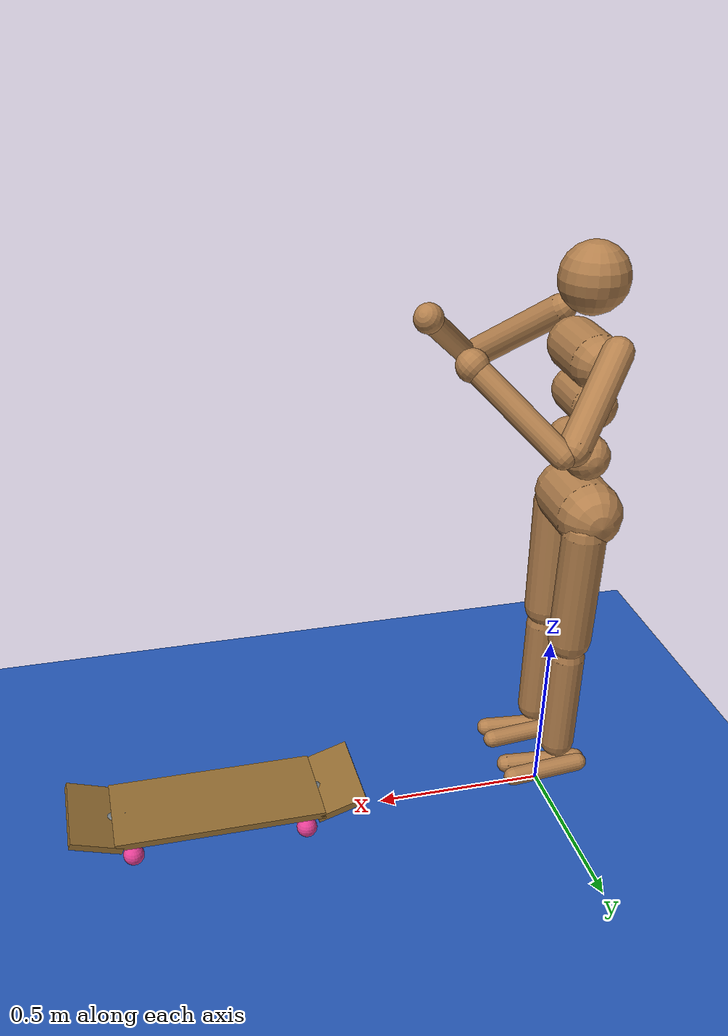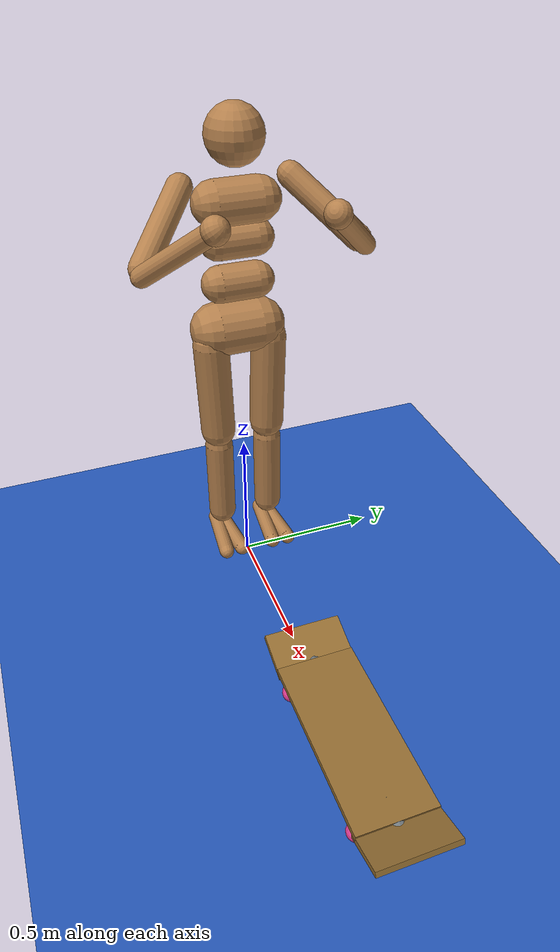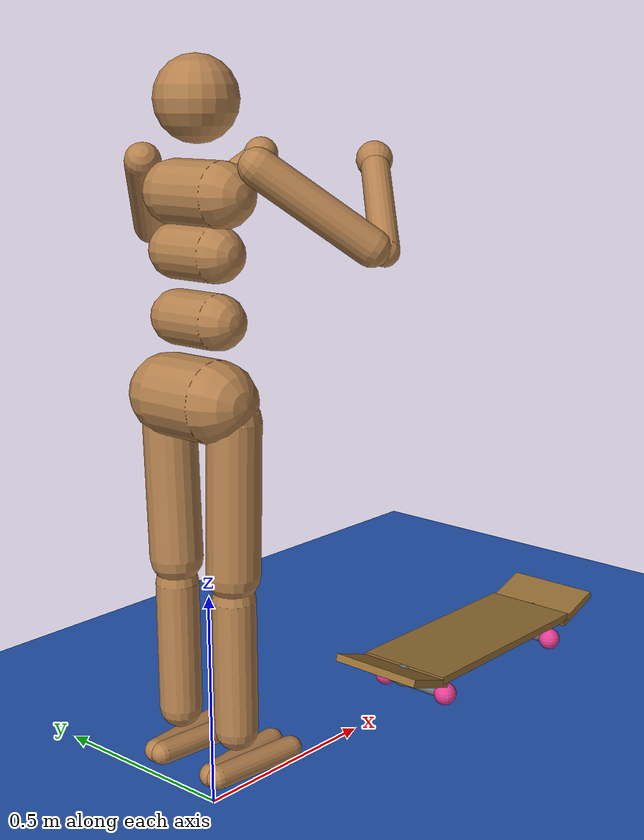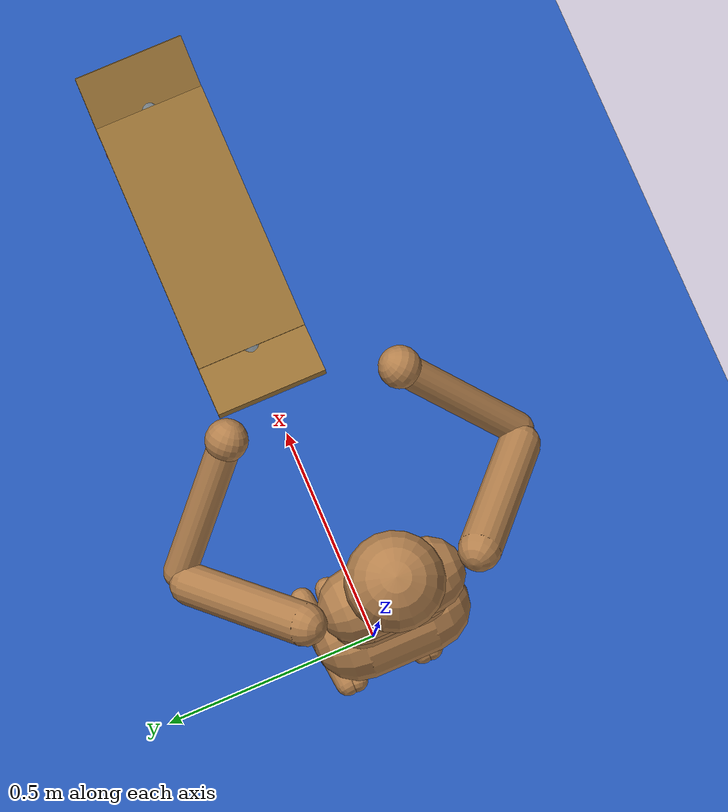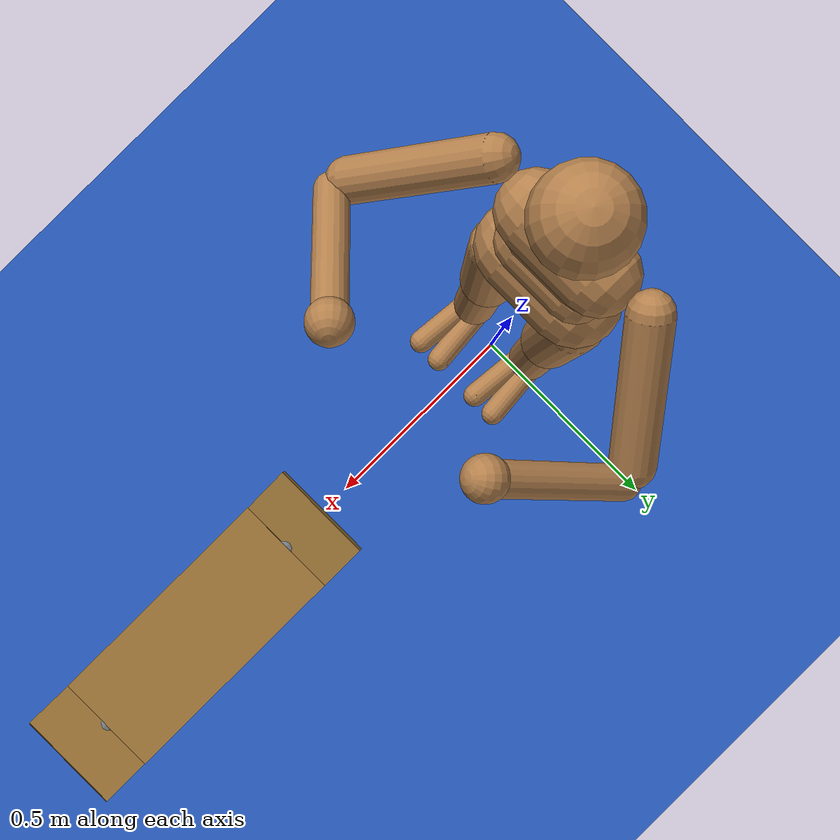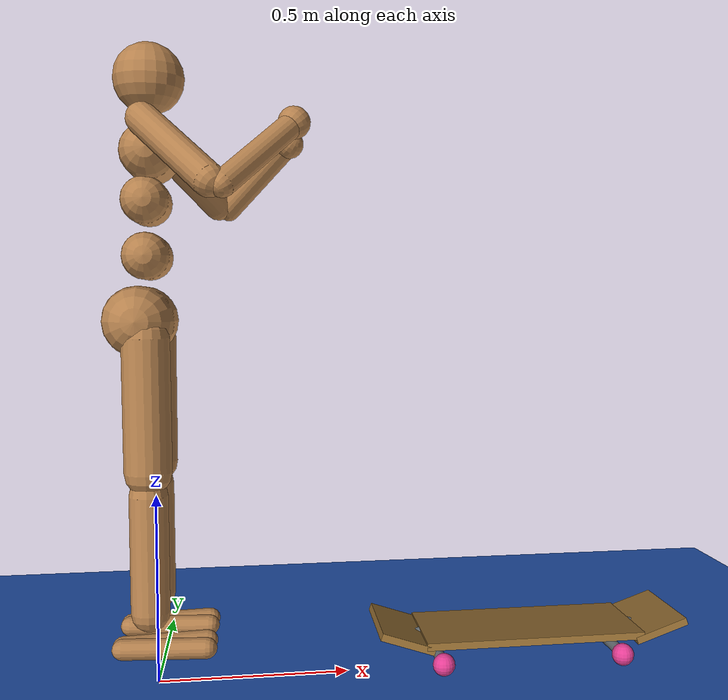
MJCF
<mujoco model="Humanoid">
  <include file="../../common.xml"/>
  <include file="../humanoid.xml" />
  <include file="./skateboard.xml" />
  <size memory="400K"/>

  <custom>
    <numeric name="agent_planner" data="0" />
    <numeric name="agent_horizon" data="0.35" />
    <numeric name="agent_timestep" data="0.015" />
    <numeric name="sampling_spline_points" data="3" />
    <numeric name="sampling_exploration" data="0.05" />
    <numeric name="gradient_spline_points" data="5" />
    <numeric name="residual_Height Goal" data="1.4 0.0 1.5" />
  </custom>

  <sensor>
    <user name="Height" dim="1" user="6 100.0 0.0 100.0 0.1" />
    <user name="Balance" dim="1" user="6 50.0 0.0 100.0 0.1" />
    <user name="CoM Vel." dim="2" user="0 10.0 0.0 100.0" />
    <user name="Joint Vel." dim="21" user="0 0.01 0.0 0.1" />
    <user name="Control" dim="21" user="3 0.025 0.0 0.1 0.3" />
    <framepos name="trace0" objtype="body" objname="torso"/>
    <framepos name="torso_position" objtype="body" objname="torso"/>
    <framepos name="head_position" objtype="body" objname="head"/>
    <framequat name="head_orientation" objtype="body" objname="head"/>
    <framezaxis name="torso_zaxis" objtype="body" objname="torso"/>
    <framelinvel name="torso_subtreelinvel" objtype="body" objname="torso" />
    <subtreecom name="torso_subtreecom" body="torso"/>
    <framexaxis name="torso_forward" objtype="body" objname="torso" />
    <framepos name="sp0" objtype="site" objname="sp0"/>
    <framepos name="sp1" objtype="site" objname="sp1"/>
    <framepos name="sp2" objtype="site" objname="sp2"/>
    <framepos name="sp3" objtype="site" objname="sp3"/>
    <subtreelinvel name="foot_right_vel" body="foot_right"/>
    <subtreelinvel name="foot_left_vel" body="foot_left"/>
  </sensor>

  <keyframe>
    <key name="home" qpos='0.947067 0 1.38526 1 0 0 0 0 0 0 0 0 0 0 0 0 0 0 0 0 0 0 0 0 0 0 0 0 1 0 0.1 1 0 0 0 0 0 0 0'/>
  </keyframe>

</mujoco>

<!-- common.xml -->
<mujoco>

    <visual>
        <headlight ambient=".4 .4 .4" diffuse=".8 .8 .8" specular="0.1 0.1 0.1"/>
        <map znear=".01"/>
        <quality shadowsize="2048"/>
        <global elevation="-15"/>
    </visual>

    <asset>
        <texture name="blue_grid" type="2d" builtin="checker" rgb1=".02 .14 .44" rgb2=".27 .55 1" width="300" height="300" mark="edge" markrgb="1 1 1"/>
        <material name="blue_grid" texture="blue_grid" texrepeat="1 1" texuniform="true" reflectance=".2"/>

        <texture name="grey_grid" type="2d" builtin="checker" rgb1=".26 .26 .26" rgb2=".6 .6 .6" width="300" height="300" mark="edge" markrgb="1 1 1"/>
        <material name="grey_grid" texture="grey_grid" texrepeat="1 1" texuniform="true" reflectance=".2"/>
        <texture name="skybox" type="skybox" builtin="gradient" rgb1=".66 .79 1" rgb2=".9 .91 .93" width="800" height="800"/>

        <material name="self" rgba=".7 .5 .3 1"/>
        <material name="self_default" rgba=".7 .5 .3 1"/>
        <material name="self_highlight" rgba="0 .5 .3 1"/>
        <material name="effector" rgba=".7 .4 .2 1"/>
        <material name="effector_default" rgba=".7 .4 .2 1"/>
        <material name="effector_highlight" rgba="0 .5 .3 1"/>
        <material name="decoration" rgba=".2 .6 .3 1"/>
        <material name="eye" rgba="0 .2 1 1"/>
        <material name="target" rgba=".6 .3 .3 1"/>
        <material name="target_default" rgba=".6 .3 .3 1"/>
        <material name="target_highlight" rgba=".6 .3 .3 .4"/>
        <material name="site" rgba=".5 .5 .5 .3"/>
    </asset>

    <size memory="1M"/>

    <statistic extent="0.4" center="0.3 0.1 0"/>

    <visual>
        <quality shadowsize="8192"/>
        <global azimuth="180" elevation="-30"/>
    </visual>

    <default>
        <geom friction="1.0"/>
    </default>

    <compiler angle="radian" autolimits="true"/>

    <asset>
        <mesh name="apple" file="../../shared_assets/apple/apple.obj" />
        <mesh name="apple_contact0" file="../../shared_assets/apple/contact0.stl"  />
        <mesh name="apple_contact1" file="../../shared_assets/apple/contact1.stl"  />

        <mesh name="doorknob" file="../../shared_assets/doorknob/doorknob.obj" />

        <mesh name="flashlight" file="../../shared_assets/flashlight/flashlight.obj" />
        <mesh name="flashlight_contact0" file="../../shared_assets/flashlight/contact0.stl"  />
        <mesh name="flashlight_contact1" file="../../shared_assets/flashlight/contact1.stl"  />

        <mesh name="hammer" file="../../shared_assets/hammer/hammer.obj" />
        <mesh name="hammer_contact0" file="../../shared_assets/hammer/contact0.stl"  />
        <mesh name="hammer_contact1" file="../../shared_assets/hammer/contact1.stl"  />

        <mesh name="phone" file="../../shared_assets/phone/phone.obj" />
        <mesh name="phone_contact0" file="../../shared_assets/phone/contact0.stl"  />
        <mesh name="phone_contact1" file="../../shared_assets/phone/contact1.stl"  />
        <mesh name="phone_contact2" file="../../shared_assets/phone/contact2.stl"  />

        <mesh name="stapler" file="../../shared_assets/stapler/stapler.obj" />
        <mesh name="stapler_contact0" file="../../shared_assets/stapler/contact0.stl"  />
        <mesh name="stapler_contact1" file="../../shared_assets/stapler/contact1.stl"  />
        <mesh name="stapler_contact2" file="../../shared_assets/stapler/contact2.stl"  />
        <mesh name="stapler_contact3" file="../../shared_assets/stapler/contact3.stl"  />
        <mesh name="stapler_contact4" file="../../shared_assets/stapler/contact4.stl"  />

        <mesh name="waterbottle" file="../../shared_assets/waterbottle/waterbottle.obj" />
        <mesh name="waterbottle_contact0" file="../../shared_assets/waterbottle/contact0.stl"  />
        <mesh name="waterbottle_contact1" file="../../shared_assets/waterbottle/contact1.stl"  />
    </asset>

</mujoco>

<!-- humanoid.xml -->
<mujoco model="Humanoid">

  <statistic extent="2" center="0 0 1"/>

  <default>
    <motor ctrlrange="-1 1" ctrllimited="true"/>
    <site size=".04" group="3"/>
    <default class="body">

      <!-- geoms -->
      <geom type="capsule" condim="1" friction=".7" solimp=".9 .99 .003" solref=".015 1" material="self"/>
      <default class="thigh">
        <geom size=".06"/>
      </default>
      <default class="shin">
        <geom fromto="0 0 0 0 0 -.3"  size=".049"/>
      </default>
      <default class="foot">
        <geom size=".027"/>
        <default class="foot1">
          <geom fromto="-.07 -.01 0 .14 -.03 0"/>
        </default>
        <default class="foot2">
          <geom fromto="-.07 .01 0 .14  .03 0"/>
        </default>
      </default>
      <default class="arm_upper">
        <geom size=".04"/>
      </default>
      <default class="arm_lower">
        <geom size=".031"/>
      </default>
      <default class="hand">
        <geom type="sphere" size=".04"/>
      </default>

      <!-- joints -->
      <joint type="hinge" damping=".2" stiffness="1" armature=".01" limited="true" solimplimit="0 .99 .01"/>
      <default class="joint_big">
        <joint damping="5" stiffness="10"/>
        <default class="hip_x">
          <joint range="-30 10"/>
        </default>
        <default class="hip_z">
          <joint range="-60 35"/>
        </default>
        <default class="hip_y">
          <joint axis="0 1 0" range="-150 20"/>
        </default>
        <default class="joint_big_stiff">
          <joint stiffness="20"/>
        </default>
      </default>
      <default class="knee">
        <joint pos="0 0 .02" axis="0 -1 0" range="-160 2"/>
      </default>
      <default class="ankle">
        <joint range="-50 50"/>
        <default class="ankle_y">
          <joint pos="0 0 .08" axis="0 1 0" stiffness="6"/>
        </default>
        <default class="ankle_x">
          <joint pos="0 0 .04" stiffness="3"/>
        </default>
      </default>
      <default class="shoulder">
        <joint range="-85 60"/>
      </default>
      <default class="elbow">
        <joint range="-100 50" stiffness="0"/>
      </default>

      <!-- tracking site -->
      <default class="tracking_site">
        <site type="sphere" size="0.027" rgba="1 0 0 1" group="3"/>
      </default>
    </default>
  </default>

  <worldbody>
    <geom name="floor" type="plane" conaffinity="1" size="50 50 .05" material="blue_grid"/>
    <body name="torso" pos="0 0 1.382" childclass="body">
      <light name="top" pos="0 0 2" mode="trackcom"/>
      <camera name="back" pos="-3 0 1" xyaxes="0 -1 0 1 0 2" mode="trackcom"/>
      <camera name="side" pos="0 -3 1" xyaxes="1 0 0 0 1 2" mode="trackcom"/>
      <freejoint name="root"/>
      <geom name="torso" fromto="0 -.07 0 0 .07 0" size=".07"/>
      <geom name="waist_upper" fromto="-.01 -.06 -.12 -.01 .06 -.12" size=".06"/>
      <body name="head" pos="0 0 .19">
        <geom name="head" type="sphere" size=".09"/>
        <site name="tracking[head]" class="tracking_site" pos="0.09 0 0" />
        <camera name="egocentric" pos=".09 0 0" xyaxes="0 -1 0 .1 0 1" fovy="80"/>
      </body>
      <body name="waist_lower" pos="-.01 0 -.26">
        <geom name="waist_lower" fromto="0 -.06 0 0 .06 0" size=".06"/>
        <joint name="abdomen_z" pos="0 0 .065" axis="0 0 1" range="-45 45" class="joint_big_stiff"/>
        <joint name="abdomen_y" pos="0 0 .065" axis="0 1 0" range="-75 30" class="joint_big"/>
        <body name="pelvis" pos="0 0 -.165">
          <site name="tracking[pelvis]" class="tracking_site" pos="0 0 0.075" size=".05" />
          <joint name="abdomen_x" pos="0 0 .1" axis="1 0 0" range="-35 35" class="joint_big"/>
          <geom name="butt" fromto="-.02 -.07 0 -.02 .07 0" size=".09"/>
          <body name="thigh_right" pos="0 -.1 -.04">
            <site name="tracking[rhip]" class="tracking_site" pos="0 0.025 0.025" />
            <joint name="hip_x_right" axis="1 0 0" class="hip_x"/>
            <joint name="hip_z_right" axis="0 0 1" class="hip_z"/>
            <joint name="hip_y_right" class="hip_y"/>
            <geom name="thigh_right" fromto="0 0 0 0 .01 -.34" class="thigh"/>
            <body name="shin_right" pos="0 .01 -.4">
              <joint name="knee_right" class="knee"/>
              <site name="tracking[rknee]" class="tracking_site" pos="0 0 0.05" />
              <geom name="shin_right" class="shin"/>
              <body name="foot_right" pos="0 0 -.39">
                <joint name="ankle_y_right" class="ankle_y"/>
                <joint name="ankle_x_right" class="ankle_x" axis="1 0 .5"/>
                <geom name="foot1_right" class="foot1"/>
                <geom name="foot2_right" class="foot2"/>
                <site name="foot_right" pos=".05 .03 0" type="sphere" size=".027"/>
                <site name="sp2" pos="-.07 0 0" type="sphere" size=".027"/>
                <site name="sp3" pos=".14 0 0" type="sphere" size=".027"/>
                <body name="heel_right" pos="-0.05 0 0.04">
                  <site name="tracking[rheel]" class="tracking_site" />
                </body>
                <body name="toe_right" pos="0.07 0 -0.01">
                  <site name="tracking[rtoe]" class="tracking_site" />
                </body>
              </body>
            </body>
          </body>
          <body name="thigh_left" pos="0 .1 -.04">
            <site name="tracking[lhip]" class="tracking_site" pos="0 -0.025 0.025" />
            <joint name="hip_x_left" axis="-1 0 0" class="hip_x"/>
            <joint name="hip_z_left" axis="0 0 -1" class="hip_z"/>
            <joint name="hip_y_left" class="hip_y"/>
            <geom name="thigh_left" fromto="0 0 0 0 -.01 -.34" class="thigh"/>
            <body name="shin_left" pos="0 -.01 -.4">
              <joint name="knee_left" class="knee"/>
              <site name="tracking[lknee]" class="tracking_site" pos="0 0 0.05" />
              <geom name="shin_left" fromto="0 0 0 0 0 -.3" class="shin"/>
              <body name="foot_left" pos="0 0 -.39">
                <joint name="ankle_y_left" class="ankle_y"/>
                <joint name="ankle_x_left" class="ankle_x" axis="-1 0 -.5"/>
                <geom name="foot1_left" class="foot1"/>
                <geom name="foot2_left" class="foot2"/>
                <site name="foot_left" pos=".05 -.03 0" type="sphere" size=".027"/>
                <site name="sp0" pos="-.07 0 0" type="sphere" size=".027"/>
                <site name="sp1" pos=".14 0 0" type="sphere" size=".027"/>
                <body name="heel_left" pos="-0.05 0 0.04">
                  <site name="tracking[lheel]" class="tracking_site" />
                </body>
                <body name="toe_left" pos="0.07 0 -0.01">
                  <site name="tracking[ltoe]" class="tracking_site" />
                </body>
              </body>
            </body>
          </body>
        </body>
      </body>
      <body name="upper_arm_right" pos="0 -.17 .06">
        <site name="tracking[rshoulder]" class="tracking_site" />
        <joint name="shoulder1_right" axis="2 1 1"  class="shoulder"/>
        <joint name="shoulder2_right" axis="0 -1 1" class="shoulder"/>
        <geom name="upper_arm_right" fromto="0 0 0 .16 -.16 -.16" class="arm_upper"/>
        <body name="lower_arm_right" pos=".18 -.18 -.18">
          <joint name="elbow_right" axis="0 -1 1" class="elbow"/>
          <site name="tracking[relbow]" class="tracking_site" />
          <site name="tracking[rhand]" class="tracking_site" pos="0.13 0.13 0.13" />
          <geom name="lower_arm_right" fromto=".01 .01 .01 .17 .17 .17" class="arm_lower"/>
          <body name="hand_right" pos=".18 .18 .18">
            <geom name="hand_right" zaxis="1 1 1" class="hand"/>
          </body>
        </body>
      </body>
      <body name="upper_arm_left" pos="0 .17 .06">
        <site name="tracking[lshoulder]" class="tracking_site" />
        <joint name="shoulder1_left" axis="-2 1 -1" class="shoulder"/>
        <joint name="shoulder2_left" axis="0 -1 -1"  class="shoulder"/>
        <geom name="upper_arm_left" fromto="0 0 0 .16 .16 -.16" class="arm_upper"/>
        <body name="lower_arm_left" pos=".18 .18 -.18">
          <joint name="elbow_left" axis="0 -1 -1" class="elbow"/>
          <site name="tracking[lelbow]" class="tracking_site" />
          <site name="tracking[lhand]" class="tracking_site" pos="0.13 -0.13 0.13" />
          <geom name="lower_arm_left" fromto=".01 -.01 .01 .17 -.17 .17" class="arm_lower"/>
          <body name="hand_left" pos=".18 -.18 .18">
            <geom name="hand_left" zaxis="1 -1 1" class="hand"/>
          </body>
        </body>
      </body>
    </body>
  </worldbody>

  <contact>
    <exclude body1="waist_lower" body2="thigh_right"/>
    <exclude body1="waist_lower" body2="thigh_left"/>
  </contact>

  <tendon>
    <fixed name="hamstring_right" limited="true" range="-0.3 2">
      <joint joint="hip_y_right" coef=".5"/>
      <joint joint="knee_right" coef="-.5"/>
    </fixed>
    <fixed name="hamstring_left" limited="true" range="-0.3 2">
      <joint joint="hip_y_left" coef=".5"/>
      <joint joint="knee_left" coef="-.5"/>
    </fixed>
  </tendon>

  <actuator>
    <motor name="abdomen_y"       gear="40"  joint="abdomen_y"/>
    <motor name="abdomen_z"       gear="40"  joint="abdomen_z"/>
    <motor name="abdomen_x"       gear="40"  joint="abdomen_x"/>
    <motor name="hip_x_right"     gear="40"  joint="hip_x_right"/>
    <motor name="hip_z_right"     gear="40"  joint="hip_z_right"/>
    <motor name="hip_y_right"     gear="120" joint="hip_y_right"/>
    <motor name="knee_right"      gear="100" joint="knee_right"/>
    <motor name="ankle_x_right"   gear="20"  joint="ankle_x_right"/>
    <motor name="ankle_y_right"   gear="20"  joint="ankle_y_right"/>
    <motor name="hip_x_left"      gear="40"  joint="hip_x_left"/>
    <motor name="hip_z_left"      gear="40"  joint="hip_z_left"/>
    <motor name="hip_y_left"      gear="120" joint="hip_y_left"/>
    <motor name="knee_left"       gear="100" joint="knee_left"/>
    <motor name="ankle_x_left"    gear="20"  joint="ankle_x_left"/>
    <motor name="ankle_y_left"    gear="20"  joint="ankle_y_left"/>
    <motor name="shoulder1_right" gear="20"  joint="shoulder1_right"/>
    <motor name="shoulder2_right" gear="20"  joint="shoulder2_right"/>
    <motor name="elbow_right"     gear="40"  joint="elbow_right"/>
    <motor name="shoulder1_left"  gear="20"  joint="shoulder1_left"/>
    <motor name="shoulder2_left"  gear="20"  joint="shoulder2_left"/>
    <motor name="elbow_left"      gear="40"  joint="elbow_left"/>
  </actuator>

</mujoco>

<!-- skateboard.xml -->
<mujoco model="skateboard">
  <default>
    <default class="skateboard">
      <default class="truck">
        <geom type="capsule" size="0.03" rgba="0.4414 0.4727 0.4922 1"/>
      </default>
      <default class="hanger">
        <!-- TODO(hartikainen): need to fix the orientation for the bodies previously -->
        <!-- welded by these fixed joints. -->
        <geom type="capsule" fromto="0.0 0.1 -0.05 0.0 -0.1 -0.05" size="0.015" rgba="0.4414 0.4727 0.4922 1"/>
      </default>
      <default class="wheel">
        <!-- TODO(hartikainen): need to fix the orientation for the bodies previously -->
        <!-- welded by these fixed joints. -->
        <geom type="sphere" size="0.03" rgba="0.8867 0.2383 0.5781 1"/>
      </default>
    </default>
  </default>

  <worldbody>
    <body name="skateboard" pos="1 0 0.1">
      <freejoint/>

      <!-- board -->
      <geom name="board" type="box" size="0.3 0.13 0.01" rgba="0.5859 0.4336 0.1992 1"/>
      <geom name="nose" type="box" size="0.075 0.13 0.01" pos="0.35 0.0 0.01" quat="-0.9659 0 0.1588 0" rgba="0.5859 0.4336 0.1992 1"/>
      <geom name="tail" type="box" size="0.075 0.13 0.01" pos="-0.35 0.0 0.01" quat="0.9659 0 0.1588 0" rgba="0.5859 0.4336 0.1992 1"/>

      <!-- trucks -->
      <geom name="nosetruck" class="truck" fromto="0.20 0.0 -0.020 0.30 0.0 -0.020"/>
      <geom name="tailtruck" class="truck" fromto="-0.20 0.0 -0.020 -0.30 0.0 -0.020"/>

      <!-- front hanger TODO(hartikainen): front or read? -->
      <body name="hanger1" pos="0.25 0.0 -0.01">
        <geom name="hanger1_geom" class="hanger"/>
        <!-- left wheel TODO(hartikainen): left or right? -->
        <body name="wheel1" pos="0.0 0.1 -0.05">
          <joint name="wheel1_joint" class="wheel"/>
          <geom name="wheel1_geom" class="wheel"/>
        </body>
        <!-- right wheel TODO(hartikainen): left or right? -->
        <body name="wheel2" pos="0.0 -0.1 -0.05">
          <joint name="wheel2_joint" class="wheel"/>
          <geom name="wheel2_geom" class="wheel"/>
        </body>
      </body>

      <!-- rear hanger TODO(hartikainen): front or read? -->
      <body name="hanger2" pos="-0.25 0.0 -0.01">
        <geom name="hanger2_geom" class="hanger"/>
        <!-- left wheel TODO(hartikainen): left or right? -->
        <body name="wheel3" pos="0.0 0.1 -0.05">
          <joint name="wheel3_joint" class="wheel"/>
          <geom name="wheel3_geom" class="wheel"/>
        </body>
        <!-- right wheel TODO(hartikainen): left or right? -->
        <body name="wheel4" pos="0.0 -0.1 -0.05">
          <joint name="wheel4_joint" class="wheel"/>
          <geom name="wheel4_geom" class="wheel"/>
        </body>
      </body>
    </body>
  </worldbody>
</mujoco>
